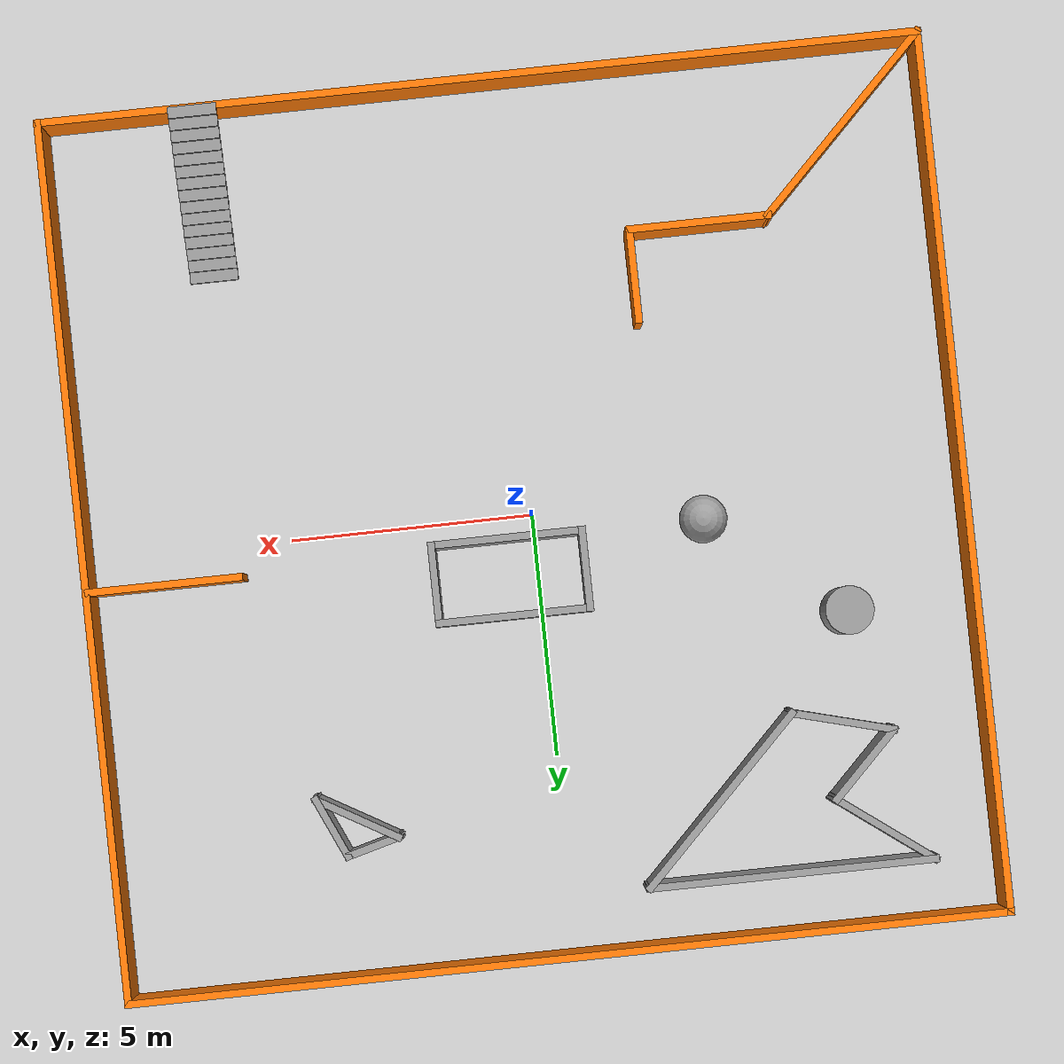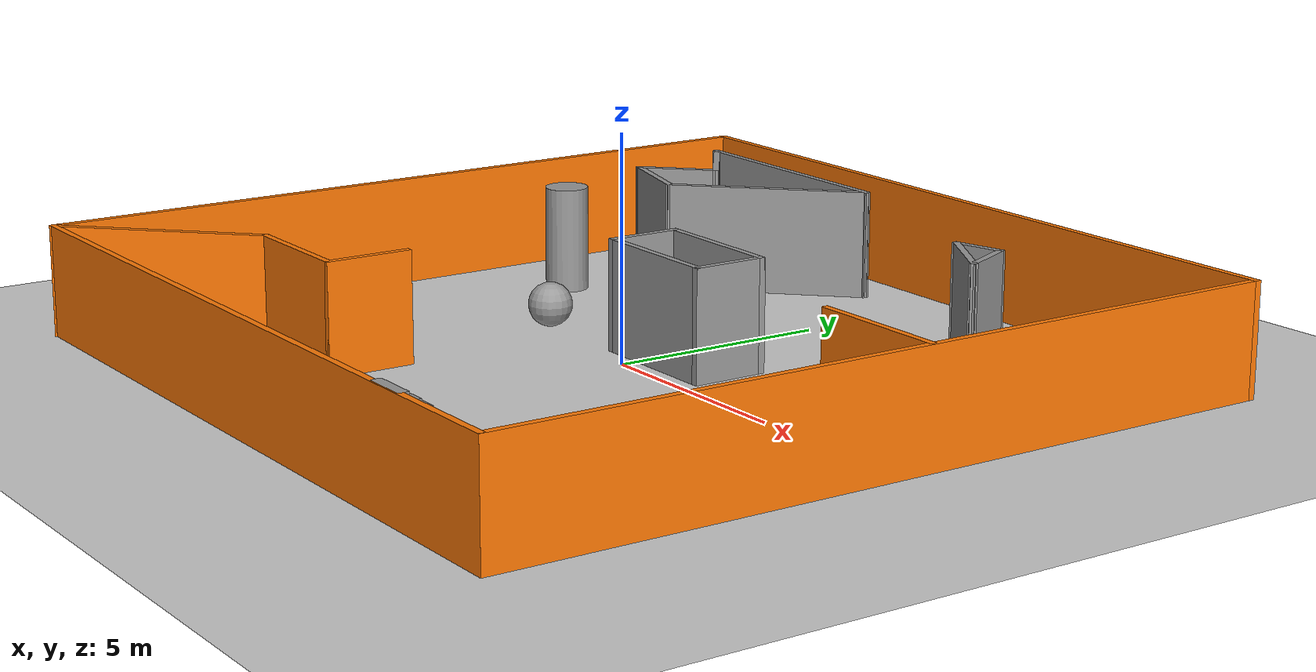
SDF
<sdf version="1.7">
 <world name="default">
  <light name="sun" type="directional">
   <pose>0 0 10 0 -0 0</pose>
   <diffuse>0.8 0.8 0.8 1</diffuse>
   <specular>0.2 0.2 0.2 1</specular>
   <attenuation>
    <range>1000</range>
    <constant>0.9</constant>
    <linear>0.01</linear>
    <quadratic>0.001</quadratic>
   </attenuation>
   <direction>-0.5 0.1 -0.9</direction>
   <spot><inner_angle>0</inner_angle><outer_angle>0</outer_angle><falloff>0</falloff></spot>
  </light>
  <model name="ground_plane">
   <static>1</static>
   <link name="link">
    <collision name="collision">
     <geometry><plane><normal>0 0 1</normal><size>100 100</size></plane></geometry>
     <surface>
      <contact><collide_bitmask>65535</collide_bitmask></contact>
      <friction><ode><mu>100</mu><mu2>50</mu2></ode></friction>
     </surface>
    </collision>
    <visual name="visual">
     <cast_shadows>0</cast_shadows>
     <geometry><plane><normal>0 0 1</normal><size>100 100</size></plane></geometry>
     <material>
      <script><uri>file://media/materials/scripts/gazebo.material</uri><name>Gazebo/Grey</name></script>
     </material>
    </visual>
   </link>
  </model>
  <gravity>0 0 -9.8</gravity>
  <magnetic_field>6e-06 2.3e-05 -4.2e-05</magnetic_field>
  <atmosphere type="adiabatic"/>
  <physics type="ode">
   <max_step_size>0.001</max_step_size>
   <real_time_factor>1</real_time_factor>
   <real_time_update_rate>1000</real_time_update_rate>
  </physics>
  <scene><ambient>0.4 0.4 0.4 1</ambient><background>0.7 0.7 0.7 1</background><shadows>1</shadows></scene>
  <spherical_coordinates>
   <surface_model>EARTH_WGS84</surface_model>
   <latitude_deg>0</latitude_deg>
   <longitude_deg>0</longitude_deg>
   <elevation>0</elevation>
   <heading_deg>0</heading_deg>
  </spherical_coordinates>
  <model name="unit_sphere">
   <pose>-3.53319 0.439367 0.5 0 -0 0</pose>
   <link name="link">
    <inertial>
     <mass>1</mass>
     <inertia><ixx>0.1</ixx><ixy>0</ixy><ixz>0</ixz><iyy>0.1</iyy><iyz>0</iyz><izz>0.1</izz></inertia>
    </inertial>
    <collision name="collision"><geometry><sphere><radius>0.5</radius></sphere></geometry></collision>
    <visual name="visual">
     <geometry><sphere><radius>0.5</radius></sphere></geometry>
     <material>
      <script><name>Gazebo/Grey</name><uri>file://media/materials/scripts/gazebo.material</uri></script>
     </material>
    </visual>
   </link>
  </model>
  <model name="Untitled1">
   <pose>0.163525 0.033123 0 0 -0 0</pose>
   <link name="Stairs_0">
    <visual name="Stairs_0_Visual_0">
     <pose>5.89058 -5.69444 0.083333 0 -0 0</pose>
     <geometry><box><size>1 0.233333 0.166667</size></box></geometry>
     <material>
      <script><uri>file://media/materials/scripts/gazebo.material</uri><name>Gazebo/Grey</name></script>
      <ambient>1 1 1 1</ambient>
     </material>
     <meta><layer>0</layer></meta>
    </visual>
    <collision name="Stairs_0_Collision_0">
     <geometry><box><size>1 0.233333 0.166667</size></box></geometry>
     <pose>5.89058 -5.69444 0.083333 0 -0 0</pose>
    </collision>
    <visual name="Stairs_0_Visual_1">
     <pose>5.89058 -5.92778 0.25 0 -0 0</pose>
     <geometry><box><size>1 0.233333 0.166667</size></box></geometry>
     <material>
      <script><uri>file://media/materials/scripts/gazebo.material</uri><name>Gazebo/Grey</name></script>
      <ambient>1 1 1 1</ambient>
     </material>
     <meta><layer>0</layer></meta>
    </visual>
    <collision name="Stairs_0_Collision_1">
     <geometry><box><size>1 0.233333 0.166667</size></box></geometry>
     <pose>5.89058 -5.92778 0.25 0 -0 0</pose>
    </collision>
    <visual name="Stairs_0_Visual_2">
     <pose>5.89058 -6.16111 0.416667 0 -0 0</pose>
     <geometry><box><size>1 0.233333 0.166667</size></box></geometry>
     <material>
      <script><uri>file://media/materials/scripts/gazebo.material</uri><name>Gazebo/Grey</name></script>
      <ambient>1 1 1 1</ambient>
     </material>
     <meta><layer>0</layer></meta>
    </visual>
    <collision name="Stairs_0_Collision_2">
     <geometry><box><size>1 0.233333 0.166667</size></box></geometry>
     <pose>5.89058 -6.16111 0.416667 0 -0 0</pose>
    </collision>
    <visual name="Stairs_0_Visual_3">
     <pose>5.89058 -6.39444 0.583333 0 -0 0</pose>
     <geometry><box><size>1 0.233333 0.166667</size></box></geometry>
     <material>
      <script><uri>file://media/materials/scripts/gazebo.material</uri><name>Gazebo/Grey</name></script>
      <ambient>1 1 1 1</ambient>
     </material>
     <meta><layer>0</layer></meta>
    </visual>
    <collision name="Stairs_0_Collision_3">
     <geometry><box><size>1 0.233333 0.166667</size></box></geometry>
     <pose>5.89058 -6.39444 0.583333 0 -0 0</pose>
    </collision>
    <visual name="Stairs_0_Visual_4">
     <pose>5.89058 -6.62778 0.75 0 -0 0</pose>
     <geometry><box><size>1 0.233333 0.166667</size></box></geometry>
     <material>
      <script><uri>file://media/materials/scripts/gazebo.material</uri><name>Gazebo/Grey</name></script>
      <ambient>1 1 1 1</ambient>
     </material>
     <meta><layer>0</layer></meta>
    </visual>
    <collision name="Stairs_0_Collision_4">
     <geometry><box><size>1 0.233333 0.166667</size></box></geometry>
     <pose>5.89058 -6.62778 0.75 0 -0 0</pose>
    </collision>
    <visual name="Stairs_0_Visual_5">
     <pose>5.89058 -6.86111 0.916667 0 -0 0</pose>
     <geometry><box><size>1 0.233333 0.166667</size></box></geometry>
     <material>
      <script><uri>file://media/materials/scripts/gazebo.material</uri><name>Gazebo/Grey</name></script>
      <ambient>1 1 1 1</ambient>
     </material>
     <meta><layer>0</layer></meta>
    </visual>
    <collision name="Stairs_0_Collision_5">
     <geometry><box><size>1 0.233333 0.166667</size></box></geometry>
     <pose>5.89058 -6.86111 0.916667 0 -0 0</pose>
    </collision>
    <visual name="Stairs_0_Visual_6">
     <pose>5.89058 -7.09444 1.08333 0 -0 0</pose>
     <geometry><box><size>1 0.233333 0.166667</size></box></geometry>
     <material>
      <script><uri>file://media/materials/scripts/gazebo.material</uri><name>Gazebo/Grey</name></script>
      <ambient>1 1 1 1</ambient>
     </material>
     <meta><layer>0</layer></meta>
    </visual>
    <collision name="Stairs_0_Collision_6">
     <geometry><box><size>1 0.233333 0.166667</size></box></geometry>
     <pose>5.89058 -7.09444 1.08333 0 -0 0</pose>
    </collision>
    <visual name="Stairs_0_Visual_7">
     <pose>5.89058 -7.32778 1.25 0 -0 0</pose>
     <geometry><box><size>1 0.233333 0.166667</size></box></geometry>
     <material>
      <script><uri>file://media/materials/scripts/gazebo.material</uri><name>Gazebo/Grey</name></script>
      <ambient>1 1 1 1</ambient>
     </material>
     <meta><layer>0</layer></meta>
    </visual>
    <collision name="Stairs_0_Collision_7">
     <geometry><box><size>1 0.233333 0.166667</size></box></geometry>
     <pose>5.89058 -7.32778 1.25 0 -0 0</pose>
    </collision>
    <visual name="Stairs_0_Visual_8">
     <pose>5.89058 -7.56111 1.41667 0 -0 0</pose>
     <geometry><box><size>1 0.233333 0.166667</size></box></geometry>
     <material>
      <script><uri>file://media/materials/scripts/gazebo.material</uri><name>Gazebo/Grey</name></script>
      <ambient>1 1 1 1</ambient>
     </material>
     <meta><layer>0</layer></meta>
    </visual>
    <collision name="Stairs_0_Collision_8">
     <geometry><box><size>1 0.233333 0.166667</size></box></geometry>
     <pose>5.89058 -7.56111 1.41667 0 -0 0</pose>
    </collision>
    <visual name="Stairs_0_Visual_9">
     <pose>5.89058 -7.79444 1.58333 0 -0 0</pose>
     <geometry><box><size>1 0.233333 0.166667</size></box></geometry>
     <material>
      <script><uri>file://media/materials/scripts/gazebo.material</uri><name>Gazebo/Grey</name></script>
      <ambient>1 1 1 1</ambient>
     </material>
     <meta><layer>0</layer></meta>
    </visual>
    <collision name="Stairs_0_Collision_9">
     <geometry><box><size>1 0.233333 0.166667</size></box></geometry>
     <pose>5.89058 -7.79444 1.58333 0 -0 0</pose>
    </collision>
    <visual name="Stairs_0_Visual_10">
     <pose>5.89058 -8.02778 1.75 0 -0 0</pose>
     <geometry><box><size>1 0.233333 0.166667</size></box></geometry>
     <material>
      <script><uri>file://media/materials/scripts/gazebo.material</uri><name>Gazebo/Grey</name></script>
      <ambient>1 1 1 1</ambient>
     </material>
     <meta><layer>0</layer></meta>
    </visual>
    <collision name="Stairs_0_Collision_10">
     <geometry><box><size>1 0.233333 0.166667</size></box></geometry>
     <pose>5.89058 -8.02778 1.75 0 -0 0</pose>
    </collision>
    <visual name="Stairs_0_Visual_11">
     <pose>5.89058 -8.26111 1.91667 0 -0 0</pose>
     <geometry><box><size>1 0.233333 0.166667</size></box></geometry>
     <material>
      <script><uri>file://media/materials/scripts/gazebo.material</uri><name>Gazebo/Grey</name></script>
      <ambient>1 1 1 1</ambient>
     </material>
     <meta><layer>0</layer></meta>
    </visual>
    <collision name="Stairs_0_Collision_11">
     <geometry><box><size>1 0.233333 0.166667</size></box></geometry>
     <pose>5.89058 -8.26111 1.91667 0 -0 0</pose>
    </collision>
    <visual name="Stairs_0_Visual_12">
     <pose>5.89058 -8.49445 2.08333 0 -0 0</pose>
     <geometry><box><size>1 0.233333 0.166667</size></box></geometry>
     <material>
      <script><uri>file://media/materials/scripts/gazebo.material</uri><name>Gazebo/Grey</name></script>
      <ambient>1 1 1 1</ambient>
     </material>
     <meta><layer>0</layer></meta>
    </visual>
    <collision name="Stairs_0_Collision_12">
     <geometry><box><size>1 0.233333 0.166667</size></box></geometry>
     <pose>5.89058 -8.49445 2.08333 0 -0 0</pose>
    </collision>
    <visual name="Stairs_0_Visual_13">
     <pose>5.89058 -8.72778 2.25 0 -0 0</pose>
     <geometry><box><size>1 0.233333 0.166667</size></box></geometry>
     <material>
      <script><uri>file://media/materials/scripts/gazebo.material</uri><name>Gazebo/Grey</name></script>
      <ambient>1 1 1 1</ambient>
     </material>
     <meta><layer>0</layer></meta>
    </visual>
    <collision name="Stairs_0_Collision_13">
     <geometry><box><size>1 0.233333 0.166667</size></box></geometry>
     <pose>5.89058 -8.72778 2.25 0 -0 0</pose>
    </collision>
    <visual name="Stairs_0_Visual_14">
     <pose>5.89058 -8.96111 2.41667 0 -0 0</pose>
     <geometry><box><size>1 0.233333 0.166667</size></box></geometry>
     <material>
      <script><uri>file://media/materials/scripts/gazebo.material</uri><name>Gazebo/Grey</name></script>
      <ambient>1 1 1 1</ambient>
     </material>
     <meta><layer>0</layer></meta>
    </visual>
    <collision name="Stairs_0_Collision_14">
     <geometry><box><size>1 0.233333 0.166667</size></box></geometry>
     <pose>5.89058 -8.96111 2.41667 0 -0 0</pose>
    </collision>
   </link>
   <link name="Wall_10">
    <collision name="Wall_10_Collision">
     <geometry><box><size>18.25 0.15 2.5</size></box></geometry>
     <pose>0 0 1.25 0 -0 0</pose>
    </collision>
    <visual name="Wall_10_Visual">
     <pose>0 0 1.25 0 -0 0</pose>
     <geometry><box><size>18.25 0.15 2.5</size></box></geometry>
     <material>
      <script><uri>file://media/materials/scripts/gazebo.material</uri><name>Gazebo/Grey</name></script>
      <ambient>0.996078 0.47451 0.0196078 1</ambient>
     </material>
     <meta><layer>0</layer></meta>
    </visual>
    <pose>0.015532 9.06553 0 0 -0 3.14159</pose>
   </link>
   <link name="Wall_11">
    <collision name="Wall_11_Collision">
     <geometry><box><size>18.25 0.15 2.5</size></box></geometry>
     <pose>0 0 1.25 0 -0 0</pose>
    </collision>
    <visual name="Wall_11_Visual">
     <pose>0 0 1.25 0 -0 0</pose>
     <geometry><box><size>18.25 0.15 2.5</size></box></geometry>
     <material>
      <script><uri>file://media/materials/scripts/gazebo.material</uri><name>Gazebo/Grey</name></script>
      <ambient>0.996078 0.47451 0.0196078 1</ambient>
     </material>
     <meta><layer>0</layer></meta>
    </visual>
    <pose>-9.03447 0.015533 0 0 -0 -1.5708</pose>
   </link>
   <link name="Wall_12">
    <collision name="Wall_12_Collision">
     <geometry><box><size>5 0.15 2.5</size></box></geometry>
     <pose>0 0 1.25 0 -0 0</pose>
    </collision>
    <visual name="Wall_12_Visual">
     <pose>0 0 1.25 0 -0 0</pose>
     <geometry><box><size>5 0.15 2.5</size></box></geometry>
     <material>
      <script><uri>file://media/materials/scripts/gazebo.material</uri><name>Gazebo/Grey</name></script>
      <ambient>0.996078 0.47451 0.0196078 1</ambient>
     </material>
     <meta><layer>0</layer></meta>
    </visual>
    <pose>-7.31973 -7.31973 0 0 -0 0.785398</pose>
   </link>
   <link name="Wall_13">
    <collision name="Wall_13_Collision">
     <geometry><box><size>3 0.15 2.5</size></box></geometry>
     <pose>0 0 1.25 0 -0 0</pose>
    </collision>
    <visual name="Wall_13_Visual">
     <pose>0 0 1.25 0 -0 0</pose>
     <geometry><box><size>3 0.15 2.5</size></box></geometry>
     <material>
      <script><uri>file://media/materials/scripts/gazebo.material</uri><name>Gazebo/Grey</name></script>
      <ambient>0.996078 0.47451 0.0196078 1</ambient>
     </material>
     <meta><layer>0</layer></meta>
    </visual>
    <pose>-4.18 -5.605 0 0 -0 0</pose>
   </link>
   <link name="Wall_14">
    <collision name="Wall_14_Collision">
     <geometry><box><size>2 0.15 2.5</size></box></geometry>
     <pose>0 0 1.25 0 -0 0</pose>
    </collision>
    <visual name="Wall_14_Visual">
     <pose>0 0 1.25 0 -0 0</pose>
     <geometry><box><size>2 0.15 2.5</size></box></geometry>
     <material>
      <script><uri>file://media/materials/scripts/gazebo.material</uri><name>Gazebo/Grey</name></script>
      <ambient>0.996078 0.47451 0.0196078 1</ambient>
     </material>
     <meta><layer>0</layer></meta>
    </visual>
    <pose>-2.755 -4.68 0 0 -0 1.5708</pose>
   </link>
   <link name="Wall_16">
    <collision name="Wall_16_Collision">
     <geometry><box><size>3.25 0.15 2.5</size></box></geometry>
     <pose>0 0 1.25 0 -0 0</pose>
    </collision>
    <visual name="Wall_16_Visual">
     <pose>0 0 1.25 0 -0 0</pose>
     <geometry><box><size>3.25 0.15 2.5</size></box></geometry>
     <material>
      <script><uri>file://media/materials/scripts/gazebo.material</uri><name>Gazebo/Grey</name></script>
      <ambient>0.996078 0.47451 0.0196078 1</ambient>
     </material>
     <meta><layer>0</layer></meta>
    </visual>
    <pose>7.46858 0.630222 0 0 -0 3.14159</pose>
   </link>
   <link name="Wall_18">
    <collision name="Wall_18_Collision">
     <geometry><box><size>3.25 0.15 2.5</size></box></geometry>
     <pose>0 0 1.25 0 -0 0</pose>
    </collision>
    <visual name="Wall_18_Visual">
     <pose>0 0 1.25 0 -0 0</pose>
     <geometry><box><size>3.25 0.15 2.5</size></box></geometry>
     <material>
      <script><uri>file://media/materials/scripts/gazebo.material</uri><name>Gazebo/Grey</name></script>
      <ambient>1 1 1 1</ambient>
     </material>
     <meta><layer>0</layer></meta>
    </visual>
    <pose>0.402581 0.400222 0 0 -0 0</pose>
   </link>
   <link name="Wall_19">
    <collision name="Wall_19_Collision">
     <geometry><box><size>1.75 0.15 2.5</size></box></geometry>
     <pose>0 0 1.25 0 -0 0</pose>
    </collision>
    <visual name="Wall_19_Visual">
     <pose>0 0 1.25 0 -0 0</pose>
     <geometry><box><size>1.75 0.15 2.5</size></box></geometry>
     <material>
      <script><uri>file://media/materials/scripts/gazebo.material</uri><name>Gazebo/Grey</name></script>
      <ambient>1 1 1 1</ambient>
     </material>
     <meta><layer>0</layer></meta>
    </visual>
    <pose>1.95258 1.20022 0 0 -0 1.5708</pose>
   </link>
   <link name="Wall_20">
    <collision name="Wall_20_Collision">
     <geometry><box><size>3.25 0.15 2.5</size></box></geometry>
     <pose>0 0 1.25 0 -0 0</pose>
    </collision>
    <visual name="Wall_20_Visual">
     <pose>0 0 1.25 0 -0 0</pose>
     <geometry><box><size>3.25 0.15 2.5</size></box></geometry>
     <material>
      <script><uri>file://media/materials/scripts/gazebo.material</uri><name>Gazebo/Grey</name></script>
      <ambient>1 1 1 1</ambient>
     </material>
     <meta><layer>0</layer></meta>
    </visual>
    <pose>0.402581 2.00022 0 0 -0 3.14159</pose>
   </link>
   <link name="Wall_21">
    <collision name="Wall_21_Collision">
     <geometry><box><size>1.75 0.15 2.5</size></box></geometry>
     <pose>0 0 1.25 0 -0 0</pose>
    </collision>
    <visual name="Wall_21_Visual">
     <pose>0 0 1.25 0 -0 0</pose>
     <geometry><box><size>1.75 0.15 2.5</size></box></geometry>
     <material>
      <script><uri>file://media/materials/scripts/gazebo.material</uri><name>Gazebo/Grey</name></script>
      <ambient>1 1 1 1</ambient>
     </material>
     <meta><layer>0</layer></meta>
    </visual>
    <pose>-1.14742 1.20022 0 0 -0 -1.5708</pose>
   </link>
   <link name="Wall_23">
    <collision name="Wall_23_Collision">
     <geometry><box><size>2 0.15 2.5</size></box></geometry>
     <pose>0 0 1.25 0 -0 0</pose>
    </collision>
    <visual name="Wall_23_Visual">
     <pose>0 0 1.25 0 -0 0</pose>
     <geometry><box><size>2 0.15 2.5</size></box></geometry>
     <material>
      <script><uri>file://media/materials/scripts/gazebo.material</uri><name>Gazebo/Grey</name></script>
      <ambient>1 1 1 1</ambient>
     </material>
     <meta><layer>0</layer></meta>
    </visual>
    <pose>4.03151 5.78472 0 0 -0 2.61799</pose>
   </link>
   <link name="Wall_24">
    <collision name="Wall_24_Collision">
     <geometry><box><size>1.25 0.15 2.5</size></box></geometry>
     <pose>0 0 1.25 0 -0 0</pose>
    </collision>
    <visual name="Wall_24_Visual">
     <pose>0 0 1.25 0 -0 0</pose>
     <geometry><box><size>1.25 0.15 2.5</size></box></geometry>
     <material>
      <script><uri>file://media/materials/scripts/gazebo.material</uri><name>Gazebo/Grey</name></script>
      <ambient>1 1 1 1</ambient>
     </material>
     <meta><layer>0</layer></meta>
    </visual>
    <pose>3.76169 6.38957 0 0 -0 0.261799</pose>
   </link>
   <link name="Wall_25">
    <collision name="Wall_25_Collision">
     <geometry><box><size>1.4746 0.15 2.5</size></box></geometry>
     <pose>0 0 1.25 0 -0 0</pose>
    </collision>
    <visual name="Wall_25_Visual">
     <pose>0 0 1.25 0 -0 0</pose>
     <geometry><box><size>1.4746 0.15 2.5</size></box></geometry>
     <material>
      <script><uri>file://media/materials/scripts/gazebo.material</uri><name>Gazebo/Grey</name></script>
      <ambient>1 1 1 1</ambient>
     </material>
     <meta><layer>0</layer></meta>
    </visual>
    <pose>4.56277 5.92707 0 0 -0 -1.1512</pose>
   </link>
   <link name="Wall_27">
    <collision name="Wall_27_Collision">
     <geometry><box><size>2 0.15 2.5</size></box></geometry>
     <pose>0 0 1.25 0 -0 0</pose>
    </collision>
    <visual name="Wall_27_Visual">
     <pose>0 0 1.25 0 -0 0</pose>
     <geometry><box><size>2 0.15 2.5</size></box></geometry>
     <material>
      <script><uri>file://media/materials/scripts/gazebo.material</uri><name>Gazebo/Grey</name></script>
      <ambient>1 1 1 1</ambient>
     </material>
     <meta><layer>0</layer></meta>
    </visual>
    <pose>-6.40149 5.77215 0 0 -0 -2.35619</pose>
   </link>
   <link name="Wall_28">
    <collision name="Wall_28_Collision">
     <geometry><box><size>2.25 0.15 2.5</size></box></geometry>
     <pose>0 0 1.25 0 -0 0</pose>
    </collision>
    <visual name="Wall_28_Visual">
     <pose>0 0 1.25 0 -0 0</pose>
     <geometry><box><size>2.25 0.15 2.5</size></box></geometry>
     <material>
      <script><uri>file://media/materials/scripts/gazebo.material</uri><name>Gazebo/Grey</name></script>
      <ambient>1 1 1 1</ambient>
     </material>
     <meta><layer>0</layer></meta>
    </visual>
    <pose>-6.04134 4.84631 0 0 -0 -0.261799</pose>
   </link>
   <link name="Wall_29">
    <collision name="Wall_29_Collision">
     <geometry><box><size>4.75 0.15 2.5</size></box></geometry>
     <pose>0 0 1.25 0 -0 0</pose>
    </collision>
    <visual name="Wall_29_Visual">
     <pose>0 0 1.25 0 -0 0</pose>
     <geometry><box><size>4.75 0.15 2.5</size></box></geometry>
     <material>
      <script><uri>file://media/materials/scripts/gazebo.material</uri><name>Gazebo/Grey</name></script>
      <ambient>1 1 1 1</ambient>
     </material>
     <meta><layer>0</layer></meta>
    </visual>
    <pose>-3.40078 6.2009 0 0 -0 0.785398</pose>
   </link>
   <link name="Wall_30">
    <collision name="Wall_30_Collision">
     <geometry><box><size>6 0.15 2.5</size></box></geometry>
     <pose>0 0 1.25 0 -0 0</pose>
    </collision>
    <visual name="Wall_30_Visual">
     <pose>0 0 1.25 0 -0 0</pose>
     <geometry><box><size>6 0.15 2.5</size></box></geometry>
     <material>
      <script><uri>file://media/materials/scripts/gazebo.material</uri><name>Gazebo/Grey</name></script>
      <ambient>1 1 1 1</ambient>
     </material>
     <meta><layer>0</layer></meta>
    </visual>
    <pose>-4.69943 7.82725 0 0 -0 3.14159</pose>
   </link>
   <link name="Wall_31">
    <collision name="Wall_31_Collision">
     <geometry><box><size>2.49223 0.15 2.5</size></box></geometry>
     <pose>0 0 1.25 0 -0 0</pose>
    </collision>
    <visual name="Wall_31_Visual">
     <pose>0 0 1.25 0 -0 0</pose>
     <geometry><box><size>2.49223 0.15 2.5</size></box></geometry>
     <material>
      <script><uri>file://media/materials/scripts/gazebo.material</uri><name>Gazebo/Grey</name></script>
      <ambient>1 1 1 1</ambient>
     </material>
     <meta><layer>0</layer></meta>
    </visual>
    <pose>-6.68593 7.12673 0 0 -0 -0.641201</pose>
   </link>
   <link name="Wall_5">
    <collision name="Wall_5_Collision">
     <geometry><box><size>18.25 0.15 2.5</size></box></geometry>
     <pose>0 0 1.25 0 -0 0</pose>
    </collision>
    <visual name="Wall_5_Visual">
     <pose>0 0 1.25 0 -0 0</pose>
     <geometry><box><size>18.25 0.15 2.5</size></box></geometry>
     <material>
      <script><uri>file://media/materials/scripts/gazebo.material</uri><name>Gazebo/Grey</name></script>
      <ambient>0.996078 0.47451 0.0196078 1</ambient>
     </material>
     <meta><layer>0</layer></meta>
    </visual>
    <pose>0.015532 -9.03447 0 0 -0 0</pose>
   </link>
   <link name="Wall_9">
    <collision name="Wall_9_Collision">
     <geometry><box><size>18.25 0.15 2.5</size></box></geometry>
     <pose>0 0 1.25 0 -0 0</pose>
    </collision>
    <visual name="Wall_9_Visual">
     <pose>0 0 1.25 0 -0 0</pose>
     <geometry><box><size>18.25 0.15 2.5</size></box></geometry>
     <material>
      <script><uri>file://media/materials/scripts/gazebo.material</uri><name>Gazebo/Grey</name></script>
      <ambient>0.996078 0.47451 0.0196078 1</ambient>
     </material>
     <meta><layer>0</layer></meta>
    </visual>
    <pose>9.06553 0.015533 0 0 -0 1.5708</pose>
   </link>
   <static>1</static>
  </model>
  <model name="unit_cylinder">
   <pose>-6.25642 2.63641 1.2154 0 -0 1e-06</pose>
   <link name="link">
    <inertial>
     <mass>1</mass>
     <inertia><ixx>0.145833</ixx><ixy>0</ixy><ixz>0</ixz><iyy>0.145833</iyy><iyz>0</iyz><izz>0.125</izz></inertia>
    </inertial>
    <collision name="collision">
     <geometry><cylinder><radius>0.5</radius><length>2.43079</length></cylinder></geometry>
    </collision>
    <visual name="visual">
     <geometry><cylinder><radius>0.5</radius><length>2.43079</length></cylinder></geometry>
     <material>
      <script><name>Gazebo/Grey</name><uri>file://media/materials/scripts/gazebo.material</uri></script>
     </material>
    </visual>
   </link>
  </model>
 </world>
</sdf>
